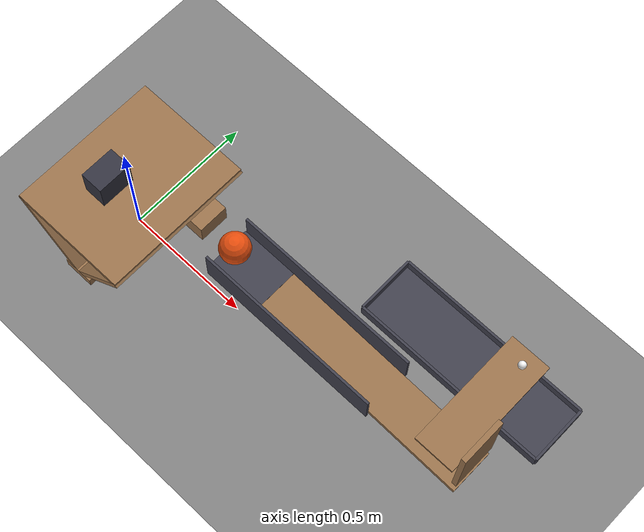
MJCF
<mujoco model="guided_wedge_striker_and_release_flap">
  <compiler angle="radian"/>
  <option timestep="0.002"/>
  <worldbody>
    <geom name="floor" type="plane" size="6 6 0.1" friction="0.9 0.005 0.001"/>
    <body name="wedge" pos="0 0 0.3">
      <freejoint/>
      <geom name="wedge" type="box" pos="0 0 0" size="0.24 0.3 0.01" mass="0.3" friction="1.5 0.01 0.002" solref="0.01 1" rgba="0.6 0.45 0.3 1"/>
      <geom name="wedge foot" type="box" pos="0 0 -0.28" size="0.06 0.3 0.02" mass="0.6" friction="2 0.01 0.002" solref="0.01 1" rgba="0.6 0.45 0.3 1"/>
      <geom name="wedge near slope" type="box" pos="-0.12 0 -0.14" size="0.184391 0.3 0.01" euler="0 -2.27942 0" mass="0.1" friction="1.5 0.005 0.0001" solref="0.01 1" rgba="0.6 0.45 0.3 1"/>
      <geom name="wedge far slope" type="box" pos="0.12 0 -0.14" size="0.184391 0.3 0.01" euler="0 -0.86217 0" mass="0.1" friction="1.5 0.005 0.0001" solref="0.01 1" rgba="0.6 0.45 0.3 1"/>
      <geom name="wedge striker" type="box" pos="0.19 0.12 -0.1" size="0.09 0.06 0.04" mass="0.04" friction="0.5 0.005 0.0001" solref="0.01 1" rgba="0.6 0.45 0.3 1"/>
    </body>
    <body name="block" pos="0.18 -0.18 0.86">
      <freejoint/>
      <geom name="block" type="box" pos="0 0 0" size="0.04 0.06 0.05" mass="4" friction="0.8 0.005 0.0001" solref="0.01 1" rgba="0.2 0.2 0.25 1"/>
    </body>
    <body name="starting pad">
      <geom name="starting pad" type="box" pos="0.46 0.12 0.045" size="0.12 0.09 0.045" friction="0.7 0.005 0.0005" solref="0.01 1" rgba="0.25 0.25 0.3 1"/>
    </body>
    <body name="ramp">
      <geom name="ramp_deck" type="box" pos="1.03 0.12 0.0525" size="0.470804 0.09 0.01" euler="0 0.058444 0" friction="0.7 0.005 0.0005" solref="0.01 1" rgba="0.6 0.45 0.3 1"/>
      <geom name="ramp_leg" type="box" pos="0.56 0.12 0.04" size="0.03 0.03 0.04" friction="0.7 0.005 0.0005" solref="0.01 1" rgba="0.6 0.45 0.3 1"/>
    </body>
    <body name="right guide">
      <geom name="right guide" type="box" pos="0.725 0.02 0.105" size="0.385 0.005 0.07" friction="0.3 0.005 0.0001" solref="0.01 1" rgba="0.25 0.25 0.3 1"/>
    </body>
    <body name="left guide">
      <geom name="left guide" type="box" pos="0.725 0.22 0.105" size="0.385 0.005 0.07" friction="0.3 0.005 0.0001" solref="0.01 1" rgba="0.25 0.25 0.3 1"/>
    </body>
    <body name="ball1" pos="0.38 0.12 0.15">
      <freejoint/>
      <geom name="ball1" type="sphere" pos="0 0 0" size="0.06" mass="0.5" condim="6" friction="0.7 0.005 0.0005" solref="0.01 1" rgba="0.9 0.3 0.05 1"/>
    </body>
    <body name="flap" pos="1.46 0.12 0.2">
      <joint name="release_hinge" type="hinge" pos="0 0 0" axis="0 1 0" limited="true" range="-1.5708 0" damping="0.001"/>
      <geom name="flap" type="box" pos="0.03 0 0.05" size="0.01 0.09 0.15" mass="0.1" friction="0.7 0.005 0.0001" solref="0.01 1" rgba="0.6 0.45 0.3 1"/>
      <geom name="flap shelf" type="box" pos="-0.06 0.12 0.12" size="0.08 0.24 0.005" mass="0.005" friction="0.7 0.005 0.001" solref="0.01 1" rgba="0.6 0.45 0.3 1"/>
    </body>
    <body name="ball2" pos="1.41 0.42 0.34">
      <freejoint/>
      <geom name="ball2" type="sphere" pos="0 0 0" size="0.015" mass="0.01" condim="6" friction="0.8 0.01 0.003" solref="0.01 1" rgba="0.95 0.95 0.95 1"/>
    </body>
    <body name="cup">
      <geom name="cup_base" type="box" pos="1.23 0.42 0.005" size="0.4 0.12 0.005" friction="1 0.01 0.01" solref="0.01 1" rgba="0.25 0.25 0.3 1"/>
      <geom name="cup_near_wall" type="box" pos="0.83 0.42 0.025" size="0.005 0.12 0.025" friction="1 0.01 0.01" solref="0.01 1" rgba="0.25 0.25 0.3 1"/>
      <geom name="cup_far_wall" type="box" pos="1.63 0.42 0.025" size="0.005 0.12 0.025" friction="1 0.01 0.01" solref="0.01 1" rgba="0.25 0.25 0.3 1"/>
      <geom name="cup_left_wall" type="box" pos="1.23 0.54 0.025" size="0.4 0.005 0.025" friction="1 0.01 0.01" solref="0.01 1" rgba="0.25 0.25 0.3 1"/>
      <geom name="cup_right_wall" type="box" pos="1.23 0.3 0.025" size="0.4 0.005 0.025" friction="1 0.01 0.01" solref="0.01 1" rgba="0.25 0.25 0.3 1"/>
    </body>
  </worldbody>
  <keyframe>
    <key name="start" qpos="0 0 0.3 1 0 0 0 0.18 -0.18 0.86 1 0 0 0 0.38 0.12 0.15 1 0 0 0 0 1.41 0.42 0.34 1 0 0 0" qvel="0 0 0 0 0 0 0 0 0 0 0 0 0 0 0 0 0 0 0 0 0 0 0 0 0"/>
  </keyframe>
</mujoco>
